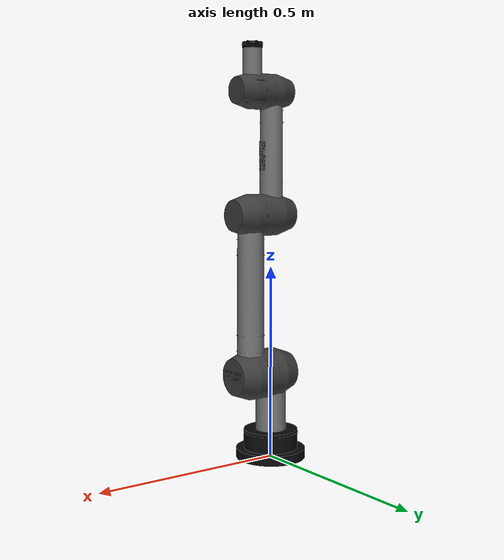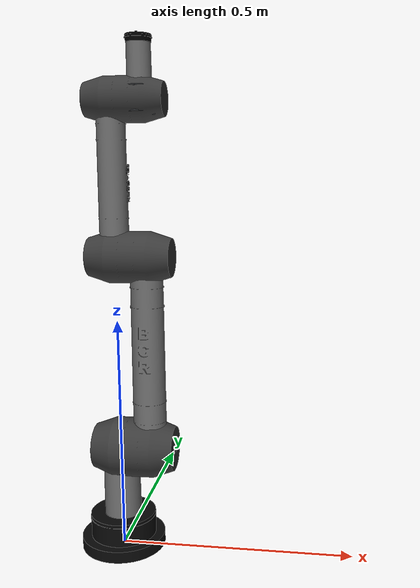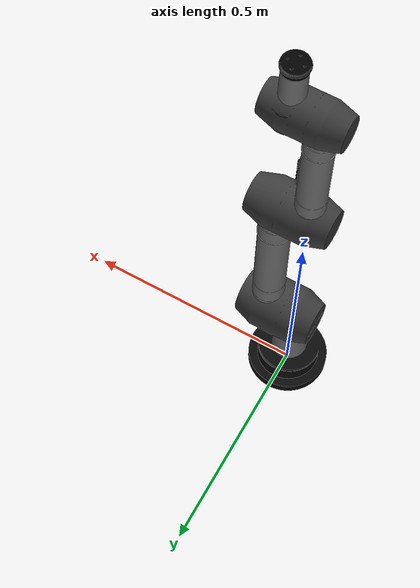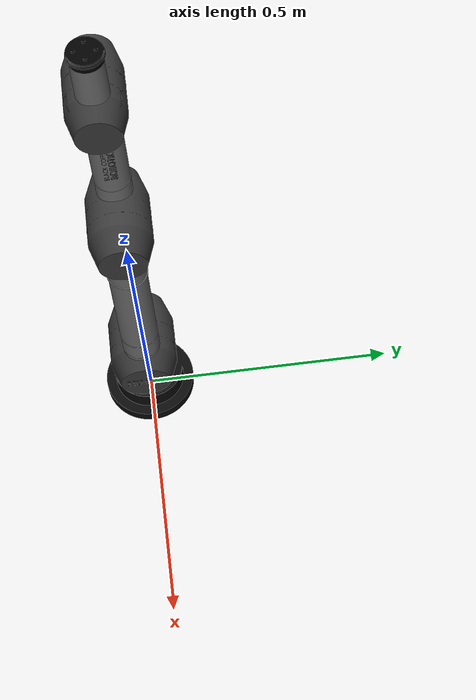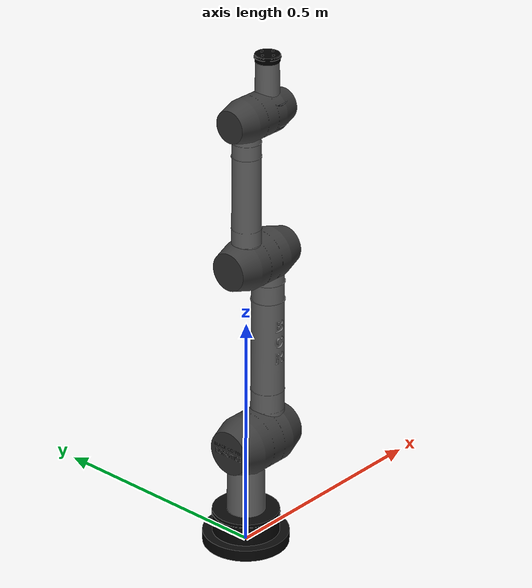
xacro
<?xml version="1.0"?>
<robot xmlns:xacro="http://www.ros.org/wiki/xacro" name="bcr_arm">
    <xacro:arg name="initial_positions_file" default="initial_positions.yaml" />
    <xacro:arg name="ros2_control_hardware_type" default="mock_components" />

    <!-- Import bcr_arm urdf file with Gazebo disabled for MoveIt demo -->
    <xacro:include filename="$(find bcr_arm_description)/urdf/mech/bcr_arm_mech.urdf.xacro" />

    <!-- Material definitions for RViz -->
    <material name="black">
        <color rgba="0.165 0.165 0.165 1.0"/>
    </material>
    <material name="dark_grey">
        <color rgba="0.376 0.376 0.376 1.0"/>
    </material>
    <material name="grey">
        <color rgba="0.565 0.565 0.565 1.0"/>
    </material>

    <!-- Connect to world frame -->
    <link name="world"/>
    <joint name="world_to_base" type="fixed">
        <parent link="world"/>
        <child link="base_link"/>
        <origin xyz="0 0 0" rpy="0 0 0"/>
    </joint>

    <!-- BCR Arm Mechanical Structure -->
    <xacro:bcr_arm_kinematics/>

    <!-- Import control_xacro -->
    <xacro:include filename="bcr_arm.ros2_control.xacro" />

    <xacro:bcr_arm_ros2_control name="FakeSystem" initial_positions_file="$(arg initial_positions_file)" ros2_control_hardware_type="$(arg ros2_control_hardware_type)"/>

</robot>

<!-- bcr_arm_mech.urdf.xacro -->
<!-- Import Python's math module for use in expressions -->
<?python import math ?>
<robot xmlns:xacro="http://www.ros.org/wiki/xacro">

  <xacro:property name="l1_len" value="0.200" />
  <xacro:property name="l2_offset" value="0.065" />
  <xacro:property name="l3_len" value="0.410" />
  <xacro:property name="l4_offset" value="-0.065" />
  <xacro:property name="l5_len" value="0.310" />
  <xacro:property name="l6_offset" value="0.060" />
  <xacro:property name="l7_len" value="0.105" />

  <!-- RViz Material Definitions -->
  <material name="color_black">
    <color rgba="0.165 0.165 0.165 1"/>
  </material>
  <material name="color_dark_grey">
    <color rgba="0.376 0.376 0.376 1"/>
  </material>
  <material name="color_grey">
    <color rgba="0.565 0.565 0.565 1"/>
  </material>
  <material name="color_light_grey">
    <color rgba="0.690 0.690 0.690 1"/>
  </material>
  <material name="color_white">
    <color rgba="0.961 0.961 0.961 1"/>
  </material>

  <xacro:macro name="bcr_arm_kinematics">

    <!-- Ignition Gazebo Material Definitions -->
    <gazebo reference="base_link">
      <material>
        <ambient>0.165 0.165 0.165 1</ambient>
        <diffuse>0.165 0.165 0.165 1</diffuse>
        <specular>0.1 0.1 0.1 1</specular>
        <emissive>0 0 0 0</emissive>
      </material>
      <mu1>0.8</mu1>
      <mu2>0.8</mu2>
    </gazebo>

    <gazebo reference="link1">
      <material>
        <ambient>0.565 0.565 0.565 1</ambient>
        <diffuse>0.565 0.565 0.565 1</diffuse>
        <specular>0.2 0.2 0.2 1</specular>
        <emissive>0 0 0 0</emissive>
      </material>
      <mu1>0.8</mu1>
      <mu2>0.8</mu2>
    </gazebo>

    <gazebo reference="link2">
      <material>
        <ambient>0.961 0.961 0.961 1</ambient>
        <diffuse>0.961 0.961 0.961 1</diffuse>
        <specular>0.3 0.3 0.3 1</specular>
        <emissive>0 0 0 0</emissive>
      </material>
      <mu1>0.8</mu1>
      <mu2>0.8</mu2>
    </gazebo>

    <gazebo reference="link3">
      <material>
        <ambient>0.565 0.565 0.565 1</ambient>
        <diffuse>0.565 0.565 0.565 1</diffuse>
        <specular>0.2 0.2 0.2 1</specular>
        <emissive>0 0 0 0</emissive>
      </material>
      <mu1>0.8</mu1>
      <mu2>0.8</mu2>
    </gazebo>

    <gazebo reference="link4">
      <material>
        <ambient>0.961 0.961 0.961 1</ambient>
        <diffuse>0.961 0.961 0.961 1</diffuse>
        <specular>0.3 0.3 0.3 1</specular>
        <emissive>0 0 0 0</emissive>
      </material>
      <mu1>0.8</mu1>
      <mu2>0.8</mu2>
    </gazebo>

    <gazebo reference="link5">
      <material>
        <ambient>0.565 0.565 0.565 1</ambient>
        <diffuse>0.565 0.565 0.565 1</diffuse>
        <specular>0.2 0.2 0.2 1</specular>
        <emissive>0 0 0 0</emissive>
      </material>
      <mu1>0.8</mu1>
      <mu2>0.8</mu2>
    </gazebo>

    <gazebo reference="link6">
      <material>
        <ambient>0.961 0.961 0.961 1</ambient>
        <diffuse>0.961 0.961 0.961 1</diffuse>
        <specular>0.3 0.3 0.3 1</specular>
        <emissive>0 0 0 0</emissive>
      </material>
      <mu1>0.8</mu1>
      <mu2>0.8</mu2>
    </gazebo>

    <gazebo reference="flange">
      <material>
        <ambient>0.376 0.376 0.376 1</ambient>
        <diffuse>0.376 0.376 0.376 1</diffuse>
        <specular>0.15 0.15 0.15 1</specular>
        <emissive>0 0 0 0</emissive>
      </material>
      <mu1>0.8</mu1>
      <mu2>0.8</mu2>
    </gazebo>

    <!-- Kinematic Chain -->
    <link name="base_link">
      <visual>
        <geometry>
          <mesh filename="package://bcr_arm_description/meshes/base_joint.dae" scale="0.001 0.001 0.001"/>
        </geometry>
      </visual>
      <collision>
        <origin xyz="0 0 0.050" rpy="0 0 0"/>
        <geometry>
          <cylinder radius="0.070" length="0.050"/>
        </geometry>
      </collision>
      <inertial>
        <mass value="2.0"/>
        <inertia ixx="0.01" ixy="0" ixz="0" iyy="0.01" iyz="0" izz="0.01"/>
      </inertial>
    </link>

    <joint name="joint1" type="revolute">
      <parent link="base_link"/>
      <child link="link1"/>
      <origin xyz="0 0 0.025" rpy="0 0 0"/>
      <axis xyz="0 0 1"/>
      <limit lower="-6.28" upper="6.28" effort="100" velocity="2"/>
    </joint>
    <link name="link1">
      <visual>
        <origin xyz="0 0 0" rpy="0 0 0"/>
        <geometry>
          <mesh filename="package://bcr_arm_description/meshes/joint_shaft_j1.dae" scale="0.001 0.001 0.001"/>
        </geometry>
      </visual>
      <visual>
        <origin xyz="0 0 0" rpy="0 0 0"/>
        <geometry>
          <mesh filename="package://bcr_arm_description/meshes/link_l1.dae" scale="0.001 0.001 0.001"/>
        </geometry>
      </visual>
      <visual>
        <origin xyz="0 0 ${l1_len}" rpy="0 0 0"/>
        <geometry>
          <mesh filename="package://bcr_arm_description/meshes/joint_housing_j2.dae" scale="0.001 0.001 0.001"/>
        </geometry>
      </visual>
      <collision>
        <origin xyz="0 0 ${l1_len/2}" rpy="0 0 0"/>
        <geometry>
          <cylinder radius="0.030" length="${l1_len*0.9}"/>
        </geometry>
      </collision>
      <inertial>
        <mass value="1.5"/>
        <inertia ixx="0.01" ixy="0" ixz="0" iyy="0.01" iyz="0" izz="0.01"/>
      </inertial>
    </link>

    <joint name="joint2" type="revolute">
      <parent link="link1"/>
      <child link="link2"/>
      <origin xyz="0 0 ${l1_len}" rpy="0 0 0"/>
      <axis xyz="1 0 0"/>
      <limit lower="-2.0" upper="2.0" effort="100" velocity="2"/>
    </joint>
    <link name="link2">
      <visual>
        <origin xyz="0 0 0" rpy="0 0 0"/>
        <geometry>
          <mesh filename="package://bcr_arm_description/meshes/joint_output_j2.dae" scale="0.001 0.001 0.001"/>
        </geometry>
      </visual>
      <visual>
        <origin xyz="${l2_offset} 0 0" rpy="0 0 0"/>
        <geometry>
          <mesh filename="package://bcr_arm_description/meshes/joint_housing_j3.dae" scale="0.001 0.001 0.001"/>
        </geometry>
      </visual>
      <collision>
        <origin xyz="${l2_offset/2} 0 0" rpy="0 ${pi/2} 0"/>
        <geometry>
          <cylinder radius="0.030" length="${math.fabs(l2_offset)*1.5}"/>
        </geometry>
      </collision>
      <inertial>
        <mass value="1.5"/>
        <inertia ixx="0.01" ixy="0" ixz="0" iyy="0.01" iyz="0" izz="0.01"/>
      </inertial>
    </link>

    <joint name="joint3" type="revolute">
      <parent link="link2"/>
      <child link="link3"/>
      <origin xyz="${l2_offset} 0 0" rpy="0 0 0"/>
      <axis xyz="0 0 1"/>
      <limit lower="-6.28" upper="6.28" effort="100" velocity="2"/>
    </joint>
    <link name="link3">
      <visual>
        <origin xyz="0 0 0" rpy="0 0 0"/>
        <geometry>
          <mesh filename="package://bcr_arm_description/meshes/joint_shaft_j3.dae" scale="0.001 0.001 0.001"/>
        </geometry>
      </visual>
      <visual>
        <origin xyz="0 0 0" rpy="0 0 0"/>
        <geometry>
          <mesh filename="package://bcr_arm_description/meshes/link_l2.dae" scale="0.001 0.001 0.001"/>
        </geometry>
      </visual>
      <visual>
        <origin xyz="0 0 ${l3_len}" rpy="0 0 0"/>
        <geometry>
          <mesh filename="package://bcr_arm_description/meshes/joint_housing_j4.dae" scale="0.001 0.001 0.001"/>
        </geometry>
      </visual>
      <collision>
        <origin xyz="0 0 ${l3_len/2}" rpy="0 0 0"/>
        <geometry>
          <cylinder radius="0.030" length="${l3_len*0.95}"/>
        </geometry>
      </collision>
      <inertial>
        <mass value="1.2"/>
        <inertia ixx="0.01" ixy="0" ixz="0" iyy="0.01" iyz="0" izz="0.01"/>
      </inertial>
    </link>

    <joint name="joint4" type="revolute">
      <parent link="link3"/>
      <child link="link4"/>
      <origin xyz="0 0 ${l3_len}" rpy="0 0 0"/>
      <axis xyz="1 0 0"/>
      <limit lower="-2.0" upper="2.0" effort="80" velocity="2"/>
    </joint>
    <link name="link4">
      <visual>
        <origin xyz="0 0 0" rpy="0 0 0"/>
        <geometry>
          <mesh filename="package://bcr_arm_description/meshes/joint_output_j4.dae" scale="0.001 0.001 0.001"/>
        </geometry>
      </visual>
      <visual>
        <origin xyz="${l4_offset} 0 0" rpy="0 0 0"/>
        <geometry>
          <mesh filename="package://bcr_arm_description/meshes/joint_housing_j5.dae" scale="0.001 0.001 0.001"/>
        </geometry>
      </visual>
      <collision>
        <origin xyz="${l4_offset/2} 0 0" rpy="0 ${pi/2} 0"/>
        <geometry>
          <cylinder radius="0.030" length="${math.fabs(l4_offset)*1.5}"/>
        </geometry>
      </collision>
      <inertial>
        <mass value="1.0"/>
        <inertia ixx="0.01" ixy="0" ixz="0" iyy="0.01" iyz="0" izz="0.01"/>
      </inertial>
    </link>

    <joint name="joint5" type="revolute">
      <parent link="link4"/>
      <child link="link5"/>
      <origin xyz="${l4_offset} 0 0" rpy="0 0 0"/>
      <axis xyz="0 0 1"/>
      <limit lower="-6.28" upper="6.28" effort="50" velocity="3"/>
    </joint>
    <link name="link5">
      <visual>
        <origin xyz="0 0 0" rpy="0 0 0"/>
        <geometry>
          <mesh filename="package://bcr_arm_description/meshes/joint_shaft_j5.dae" scale="0.001 0.001 0.001"/>
        </geometry>
      </visual>
      <visual>
        <origin xyz="0 0 0" rpy="0 0 0"/>
        <geometry>
          <mesh filename="package://bcr_arm_description/meshes/link_l3.dae" scale="0.001 0.001 0.001"/>
        </geometry>
      </visual>
      <visual>
        <origin xyz="0 0 ${l5_len}" rpy="0 0 0"/>
        <geometry>
          <mesh filename="package://bcr_arm_description/meshes/joint_housing_j6.dae" scale="0.001 0.001 0.001"/>
        </geometry>
      </visual>
      <collision>
        <origin xyz="0 0 ${l5_len/2}" rpy="0 0 0"/>
        <geometry>
          <cylinder radius="0.025" length="${l5_len*0.95}"/>
        </geometry>
      </collision>
      <inertial>
        <mass value="0.8"/>
        <inertia ixx="0.01" ixy="0" ixz="0" iyy="0.01" iyz="0" izz="0.01"/>
      </inertial>
    </link>

    <joint name="joint6" type="revolute">
      <parent link="link5"/>
      <child link="link6"/>
      <origin xyz="0 0 ${l5_len}" rpy="0 0 0"/>
      <axis xyz="1 0 0"/>
      <limit lower="-2.0" upper="2.0" effort="50" velocity="3"/>
    </joint>
    <link name="link6">
      <visual>
        <origin xyz="0 0 0" rpy="0 0 0"/>
        <geometry>
          <mesh filename="package://bcr_arm_description/meshes/joint_output_j6.dae" scale="0.001 0.001 0.001"/>
        </geometry>
      </visual>
      <visual>
        <origin xyz="${l6_offset} 0 0" rpy="0 0 0"/>
        <geometry>
          <mesh filename="package://bcr_arm_description/meshes/joint_housing_j7.dae" scale="0.001 0.001 0.001"/>
        </geometry>
      </visual>
      <collision>
        <origin xyz="${l6_offset/2} 0 0" rpy="0 ${pi/2} 0"/>
        <geometry>
          <cylinder radius="0.030" length="${math.fabs(l6_offset)*1.5}"/>
        </geometry>
      </collision>
      <inertial>
        <mass value="0.5"/>
        <inertia ixx="0.01" ixy="0" ixz="0" iyy="0.01" iyz="0" izz="0.01"/>
      </inertial>
    </link>

    <joint name="joint7" type="revolute">
      <parent link="link6"/>
      <child link="flange"/>
      <origin xyz="${l6_offset} 0 0" rpy="0 0 0"/>
      <axis xyz="0 0 1"/>
      <limit lower="-6.28" upper="6.28" effort="30" velocity="4"/>
    </joint>
    <link name="flange">
      <visual>
        <origin xyz="0 0 0" rpy="0 0 0"/>
        <geometry>
          <mesh filename="package://bcr_arm_description/meshes/joint_shaft_j7.dae" scale="0.001 0.001 0.001"/>
        </geometry>
      </visual>
      <visual>
        <origin xyz="0 0 0" rpy="0 0 0"/>
        <geometry>
          <mesh filename="package://bcr_arm_description/meshes/link_l4.dae" scale="0.001 0.001 0.001"/>
        </geometry>
      </visual>
      <visual>
        <origin xyz="0 0 ${l7_len}" rpy="0 0 0"/>
        <geometry>
          <mesh filename="package://bcr_arm_description/meshes/tool_flange.dae" scale="0.001 0.001 0.001"/>
        </geometry>
      </visual>
      <collision>
        <origin xyz="0 0 ${l7_len/2}" rpy="0 0 0"/>
        <geometry>
          <cylinder radius="0.025" length="${l7_len*0.9}"/>
        </geometry>
      </collision>
      <inertial>
        <mass value="0.3"/>
        <inertia ixx="0.01" ixy="0" ixz="0" iyy="0.01" iyz="0" izz="0.01"/>
      </inertial>
    </link>
  </xacro:macro>
</robot>
